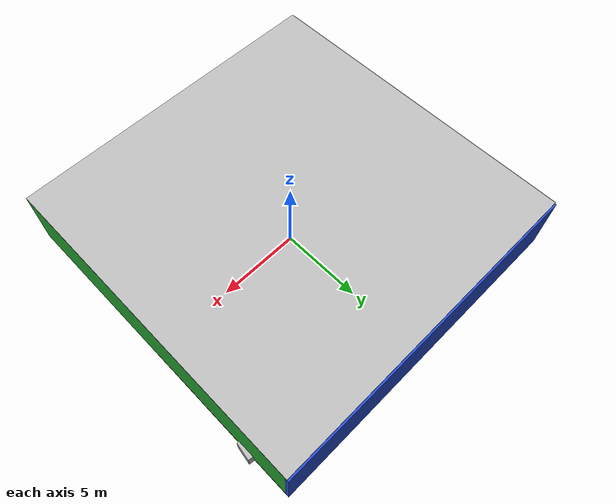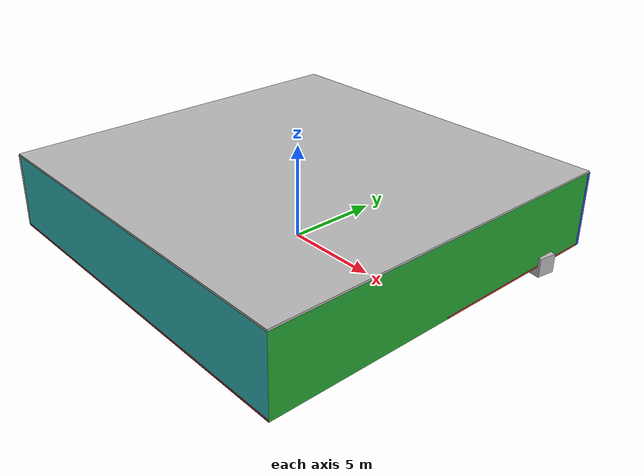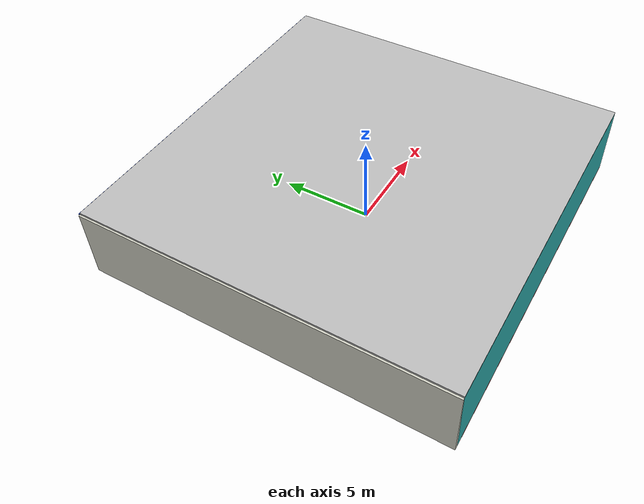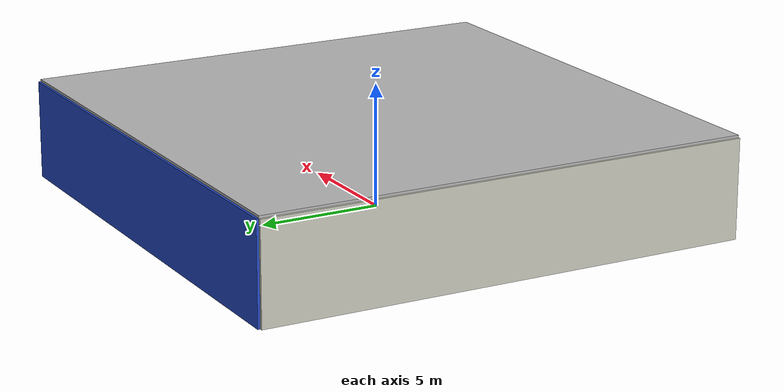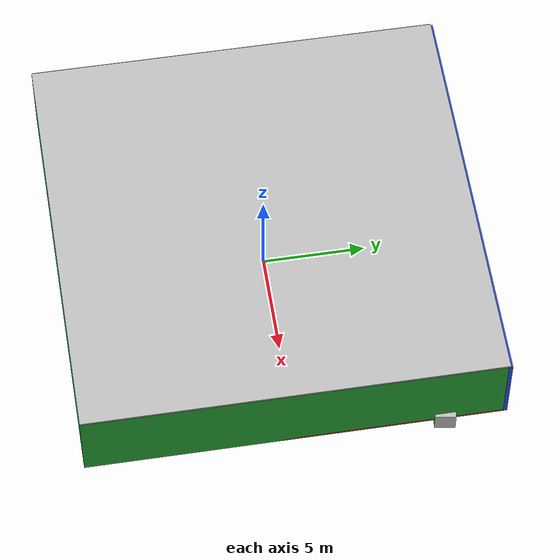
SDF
<sdf version="1.4">
 <world name="default">
  <physics type="ode">
   <max_step_size>0.001</max_step_size>
   <real_time_factor>1</real_time_factor>
   <real_time_update_rate>1000</real_time_update_rate>
   <gravity>0 0 -9.8</gravity>
  </physics>
  <scene><ambient>0.4 0.4 0.4 1</ambient><background>0.7 0.7 0.7 1</background><shadows>1</shadows></scene>
  <model name="Surrounding">
   <static>1</static>
   <link name="Ceiling">
    <collision name="Ceiling_Collision"><geometry><box><size>20 20 0.1</size></box></geometry></collision>
    <visual name="Ceiling_Visual">
     <geometry><box><size>20 20 0.1</size></box></geometry>
     <material>
      <script><uri>file://media/materials/scripts/gazebo.material</uri><name>Gazebo/LightOff</name></script>
     </material>
    </visual>
    <pose>0 0 4.05 0 0 0</pose>
   </link>
   <link name="Wall_South">
    <collision name="Wall_South_Collision">
     <geometry><box><size>20 0 4</size></box></geometry>
     <pose>0 0 2 0 -0 0</pose>
    </collision>
    <visual name="Wall_South_Visual">
     <pose>0 0 2 0 -0 0</pose>
     <geometry><box><size>20 0 4</size></box></geometry>
     <material>
      <script>
       <uri>file://media/materials/scripts/gazebo.material</uri>
       <name>Gazebo/TurquoiseGlowOutline</name>
      </script>
     </material>
    </visual>
    <velocity_decay><linear>0</linear><angular>0</angular></velocity_decay>
    <pose>0 -10 0 0 -0 0</pose>
   </link>
   <link name="Wall_East">
    <collision name="Wall_21_Collision">
     <geometry><box><size>20 0 4</size></box></geometry>
     <pose>0 0 2 0 -0 0</pose>
    </collision>
    <visual name="Wall_21_Visual">
     <pose>0 0 2 0 -0 0</pose>
     <geometry><box><size>20 0 4</size></box></geometry>
     <material>
      <script><uri>file://media/materials/scripts/gazebo.material</uri><name>Gazebo/Green</name></script>
     </material>
    </visual>
    <velocity_decay><linear>0</linear><angular>0</angular></velocity_decay>
    <pose>10 0 0 0 -0 1.5708</pose>
   </link>
   <link name="Wall_North">
    <collision name="Wall_22_Collision">
     <geometry><box><size>20 0.2 4</size></box></geometry>
     <pose>0 0 2 0 -0 0</pose>
    </collision>
    <visual name="Wall_22_Visual">
     <pose>0 0 2 0 -0 0</pose>
     <geometry><box><size>20 0.2 4</size></box></geometry>
     <material>
      <script><uri>file://media/materials/scripts/gazebo.material</uri><name>Gazebo/BlueGlow</name></script>
     </material>
    </visual>
    <velocity_decay><linear>0</linear><angular>0</angular></velocity_decay>
    <pose>0 10 0 0 -0 0</pose>
   </link>
   <link name="Wall_West">
    <collision name="Wall_23_Collision">
     <geometry><box><size>20 0.2 4</size></box></geometry>
     <pose>0 0 2 0 -0 0</pose>
    </collision>
    <visual name="Wall_23_Visual">
     <pose>0 0 2 0 -0 0</pose>
     <geometry><box><size>20 0.2 4</size></box></geometry>
     <material>
      <script><uri>file://media/materials/scripts/gazebo.material</uri><name>Gazebo/PaintedWall</name></script>
     </material>
    </visual>
    <velocity_decay><linear>0</linear><angular>0</angular></velocity_decay>
    <pose>-10 0 0 0 0 -1.5708</pose>
   </link>
   <link name="Ground_link">
    <collision name="collision">
     <pose>0 0 .05 0 -0 0</pose>
     <geometry><box><size>20 20 0.1</size></box></geometry>
    </collision>
    <visual name="visual">
     <pose>0 0 .05 0 -0 0</pose>
     <geometry><box><size>20 20 0.1</size></box></geometry>
     <material>
      <script><uri>file://media/materials/scripts/gazebo.material</uri><name>Gazebo/Red</name></script>
     </material>
    </visual>
   </link>
   <static>1</static>
  </model>
  <spherical_coordinates>
   <surface_model>EARTH_WGS84</surface_model>
   <latitude_deg>0</latitude_deg>
   <longitude_deg>0</longitude_deg>
   <elevation>0</elevation>
   <heading_deg>0</heading_deg>
  </spherical_coordinates>
  <light name="lightball_0" type="diffuse">
   <diffuse>0.8 0.8 0.8 1</diffuse>
   <specular>0.2 0.2 0.2 1</specular>
   <attenuation>
    <range>100</range>
    <constant>0.7</constant>
    <linear>0.01</linear>
    <quadratic>0.001</quadratic>
   </attenuation>
   <direction>-0.5 0.1 -0.9</direction>
   <pose>-1.85022748279 -1.7057133599 3.38456841258 0 0 0</pose>
  </light>
  <light name="lightball_1" type="diffuse">
   <diffuse>0.8 0.8 0.8 1</diffuse>
   <specular>0.2 0.2 0.2 1</specular>
   <attenuation>
    <range>100</range>
    <constant>0.7</constant>
    <linear>0.01</linear>
    <quadratic>0.001</quadratic>
   </attenuation>
   <direction>-0.5 0.1 -0.9</direction>
   <pose>-5.45323832125 7.57218802098 1.11899966403 0 0 0</pose>
  </light>
  <light name="lightball_2" type="diffuse">
   <diffuse>0.8 0.8 0.8 1</diffuse>
   <specular>0.2 0.2 0.2 1</specular>
   <attenuation>
    <range>100</range>
    <constant>0.7</constant>
    <linear>0.01</linear>
    <quadratic>0.001</quadratic>
   </attenuation>
   <direction>-0.5 0.1 -0.9</direction>
   <pose>-6.87009067466 6.83779918238 1.99446582068 0 0 0</pose>
  </light>
  <light name="lightball_3" type="diffuse">
   <diffuse>0.8 0.8 0.8 1</diffuse>
   <specular>0.2 0.2 0.2 1</specular>
   <attenuation>
    <range>100</range>
    <constant>0.7</constant>
    <linear>0.01</linear>
    <quadratic>0.001</quadratic>
   </attenuation>
   <direction>-0.5 0.1 -0.9</direction>
   <pose>5.27191377352 -6.46899894718 2.45669302311 0 0 0</pose>
  </light>
  <light name="lightball_4" type="diffuse">
   <diffuse>0.8 0.8 0.8 1</diffuse>
   <specular>0.2 0.2 0.2 1</specular>
   <attenuation>
    <range>100</range>
    <constant>0.7</constant>
    <linear>0.01</linear>
    <quadratic>0.001</quadratic>
   </attenuation>
   <direction>-0.5 0.1 -0.9</direction>
   <pose>-6.31117499483 -2.86210714098 1.93284471466 0 0 0</pose>
  </light>
  <include>
   <uri>model://robocup_3Dsim_goal</uri>
   <pose>-4.6512688714 -4.69459048767 0 0 0 0.603774626072</pose>
  </include>
  <include><uri>model://cabinet</uri><pose>-4.05317359029 4.46995942047 0 0 0 1.77853545169</pose></include>
  <include><uri>model://cabinet</uri><pose>1.38283297191 -7.67558365921 0 0 0 2.56972381369</pose></include>
  <include><uri>model://table</uri><pose>1.7269270444 1.54094352635 0 0 0 2.84956036134</pose></include>
  <include><uri>model://cabinet</uri><pose>5.13525325582 -7.89334914798 0 0 0 0.675904080776</pose></include>
  <include>
   <uri>model://textured_shapes</uri>
   <pose>8.22730892607 7.37531708093 0 0 0 1.42900193862</pose>
  </include>
 </world>
</sdf>

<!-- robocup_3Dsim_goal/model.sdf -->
<sdf version="1.5">
  <model name="robocup_3d_goal">
    <static>true</static>
    <link name="left_post">
      <pose>0 1.05 0.45 0 0 0</pose>
      <collision name="collision">
        <geometry>
          <cylinder>
            <radius>0.05</radius>
            <length>0.9</length>
          </cylinder>
        </geometry>
      </collision>
      <visual name="visual">
        <geometry>
          <cylinder>
            <radius>0.05</radius>
            <length>0.9</length>
          </cylinder>
        </geometry>
        <material>
          <script>
            <uri>file://media/materials/scripts/gazebo.material</uri>
            <name>Gazebo/ZincYellow</name>
          </script>
        </material>
      </visual>
    </link>
    <link name="left_support_horiz_lower">
      <pose>0.30 1.05 0.01 0 0 0</pose>
      <collision name="collision">
        <geometry>
          <box>
            <size>0.50 0.02 0.02</size>
          </box>
        </geometry>
      </collision>
      <visual name="visual">
        <geometry>
          <box>
            <size>0.50 0.02 0.02</size>
          </box>
        </geometry>
        <material>
          <script>
            <uri>file://media/materials/scripts/gazebo.material</uri>
            <name>Gazebo/White</name>
          </script>
        </material>
      </visual>
    </link>
    <link name="left_support_horiz_upper">
      <pose>0.30 1.05 0.79 0 0 0</pose>
      <collision name="collision">
        <geometry>
          <box>
            <size>0.50 0.02 0.02</size>
          </box>
        </geometry>
      </collision>
      <visual name="visual">
        <geometry>
          <box>
            <size>0.50 0.02 0.02</size>
          </box>
        </geometry>
        <material>
          <script>
            <uri>file://media/materials/scripts/gazebo.material</uri>
            <name>Gazebo/White</name>
          </script>
        </material>
      </visual>
    </link>
    <link name="left_support_vertical">
      <pose>0.56 1.05 0.4 0 1.5708 0</pose>
      <collision name="collision">
        <geometry>
          <box>
            <size>0.80 0.02 0.02</size>
          </box>
        </geometry>
      </collision>
      <visual name="visual">
        <geometry>
          <box>
            <size>0.80 0.02 0.02</size>
          </box>
        </geometry>
        <material>
          <script>
            <uri>file://media/materials/scripts/gazebo.material</uri>
            <name>Gazebo/White</name>
          </script>
        </material>
      </visual>
    </link>
    <link name="right_support_horiz_lower">
      <pose>0.30 -1.05 0.01 0 0 0</pose>
      <collision name="collision">
        <geometry>
          <box>
            <size>0.50 0.02 0.02</size>
          </box>
        </geometry>
      </collision>
      <visual name="visual">
        <geometry>
          <box>
            <size>0.50 0.02 0.02</size>
          </box>
        </geometry>
        <material>
          <script>
            <uri>file://media/materials/scripts/gazebo.material</uri>
            <name>Gazebo/White</name>
          </script>
        </material>
      </visual>
    </link>
    <link name="right_support_horiz_upper">
      <pose>0.30 -1.05 0.79 0 0 0</pose>
      <collision name="collision">
        <geometry>
          <box>
            <size>0.50 0.02 0.02</size>
          </box>
        </geometry>
      </collision>
      <visual name="visual">
        <geometry>
          <box>
            <size>0.50 0.02 0.02</size>
          </box>
        </geometry>
        <material>
          <script>
            <uri>file://media/materials/scripts/gazebo.material</uri>
            <name>Gazebo/White</name>
          </script>
        </material>
      </visual>
    </link>
    <link name="right_support_vertical">
      <pose>0.56 -1.05 0.4 0 1.5708 0</pose>
      <collision name="collision">
        <geometry>
          <box>
            <size>0.80 0.02 0.02</size>
          </box>
        </geometry>
      </collision>
      <visual name="visual">
        <geometry>
          <box>
            <size>0.80 0.02 0.02</size>
          </box>
        </geometry>
        <material>
          <script>
            <uri>file://media/materials/scripts/gazebo.material</uri>
            <name>Gazebo/White</name>
          </script>
        </material>
      </visual>
    </link>
    <link name="center_support_horiz_lower">
      <pose>0.56 0 0.01 0 1.5708 0</pose>
      <collision name="collision">
        <geometry>
          <box>
            <size>0.02 2.08 0.02</size>
          </box>
        </geometry>
      </collision>
      <visual name="visual">
        <geometry>
          <box>
            <size>0.02 2.08 0.02</size>
          </box>
        </geometry>
        <material>
          <script>
            <uri>file://media/materials/scripts/gazebo.material</uri>
            <name>Gazebo/White</name>
          </script>
        </material>
      </visual>
    </link>
    <link name="center_support_horiz_upper">
      <pose>0.56 0 0.79 0 1.5708 0</pose>
      <collision name="collision">
        <geometry>
          <box>
            <size>0.02 2.08 0.02</size>
          </box>
        </geometry>
      </collision>
      <visual name="visual">
        <geometry>
          <box>
            <size>0.02 2.08 0.02</size>
          </box>
        </geometry>
        <material>
          <script>
            <uri>file://media/materials/scripts/gazebo.material</uri>
            <name>Gazebo/White</name>
          </script>
        </material>
      </visual>
    </link>
    <link name="right_post">
      <pose>0 -1.05 0.45 0 0 0</pose>
      <collision name="collision">
        <geometry>
          <cylinder>
            <radius>0.05</radius>
            <length>0.9</length>
          </cylinder>
        </geometry>
      </collision>
      <visual name="visual">
        <geometry>
          <cylinder>
            <radius>0.05</radius>
            <length>0.9</length>
          </cylinder>
        </geometry>
        <material>
          <script>
            <uri>file://media/materials/scripts/gazebo.material</uri>
            <name>Gazebo/ZincYellow</name>
          </script>
        </material>
      </visual>
    </link>
    <link name="crossbar">
      <pose>0 0 0.85 1.57 1.57 0</pose>
      <collision name="collision">
        <geometry>
          <cylinder>
            <radius>0.05</radius>
            <length>2.0</length>
          </cylinder>
        </geometry>
      </collision>
      <visual name="visual">
        <geometry>
          <cylinder>
            <radius>0.05</radius>
            <length>2.0</length>
          </cylinder>
        </geometry>
        <material>
          <script>
            <uri>file://media/materials/scripts/gazebo.material</uri>
            <name>Gazebo/ZincYellow</name>
          </script>
        </material>
      </visual>
    </link>
    <link name="center_net">
      <pose>0.56 0 0.40 0 0 0</pose>
      <collision name="collision">
        <geometry>
          <box>
            <size>0.01 2.1 0.80</size>
          </box>
        </geometry>
      </collision>
      <visual name="visual">
        <geometry>
          <box>
            <size>0.01 2.1 0.80</size>
          </box>
        </geometry>
        <material>
          <script>
            <uri>model://../model_source/models/robocup09_spl_field/materials/scripts/</uri>
            <uri>model://../model_source/models/robocup09_spl_field/materials/textures/</uri>
            <name>RoboCup/Net</name>
          </script>
        </material>
      </visual>
    </link>
    <link name="left_net">
      <pose>0.30 1.05 0.40 0 0 0</pose>
      <collision name="collision">
        <geometry>
          <box>
            <size>0.50 0.01 0.76</size>
          </box>
        </geometry>
      </collision>
      <visual name="visual">
        <geometry>
          <box>
            <size>0.50 0.01 0.76</size>
          </box>
        </geometry>
        <material>
          <script>
            <uri>model://../model_source/models/robocup09_spl_field/materials/scripts/</uri>
            <uri>model://../model_source/models/robocup09_spl_field/materials/textures/</uri>
            <name>RoboCup/Net</name>
          </script>
        </material>
      </visual>
    </link>
    <link name="right_net">
      <pose>0.30 -1.05 0.40 0 0 0</pose>
      <collision name="collision">
        <geometry>
          <box>
            <size>0.50 0.01 0.76</size>
          </box>
        </geometry>
      </collision>
      <visual name="visual">
        <geometry>
          <box>
            <size>0.50 0.01 0.76</size>
          </box>
        </geometry>
        <material>
          <script>
            <uri>model://../model_source/models/robocup09_spl_field/materials/scripts/</uri>
            <uri>model://../model_source/models/robocup09_spl_field/materials/textures/</uri>
            <name>RoboCup/Net</name>
          </script>
        </material>
      </visual>
    </link>
  </model>
</sdf>

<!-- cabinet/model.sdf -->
<sdf version="1.5">
  <model name="cabinet">
    <static>true</static>
    <link name="cabinet_bottom_plate">
      <inertial>
        <pose>0 0 -1 0 0 0</pose>
        <inertia>
          <ixx>2.050000</ixx>
          <ixy>0</ixy>
          <ixz>0</ixz>
          <iyy>2.050000</iyy>
          <iyz>0</iyz>
          <izz>2.050000</izz>
        </inertia>
        <mass>25.000000</mass>
      </inertial>
      <collision name="cabinet_bottom_plate_geom">
        <pose>0 0 0.010000 0 0 0</pose>
        <geometry>
          <box>
            <size>0.450000 0.450000 0.020000</size>
          </box>
        </geometry>
      </collision>
      <visual name="cabinet_bottom_plate_geom_visual">
        <pose>0 0 0.010000 0 0 0</pose>
        <geometry>
          <box>
            <size>0.450000 0.450000 0.020000</size>
          </box>
        </geometry>
        <material>
          <script>
            <uri>model://media/materials/scripts/gazebo.material</uri>
            <name>Gazebo/Wood</name>
          </script>
        </material>
      </visual>
      <collision name="cabinet_bottom_plate_geom_cabinet_back_plate">
        <pose>0.235000 0 0.510000 0 0 0</pose>
        <geometry>
          <box>
            <size>0.020000 0.450000 1.020000</size>
          </box>
        </geometry>
      </collision>
      <visual name="cabinet_bottom_plate_geom_cabinet_back_plate_visual">
        <pose>0.235000 0 0.510000 0 0 0</pose>
        <geometry>
          <box>
            <size>0.020000 0.450000 1.020000</size>
          </box>
        </geometry>
        <material>
          <script>
            <uri>model://media/materials/scripts/gazebo.material</uri>
            <name>Gazebo/Wood</name>
          </script>
        </material>
      </visual>
      <collision name="cabinet_bottom_plate_geom_cabinet_left_plate">
        <pose>0 0.235000 0.510000 0 0 0</pose>
        <geometry>
          <box>
            <size>0.450000 0.020000 1.020000</size>
          </box>
        </geometry>
      </collision>
      <visual name="cabinet_bottom_plate_geom_cabinet_left_plate_visual">
        <pose>0 0.235000 0.510000 0 0 0</pose>
        <geometry>
          <box>
            <size>0.450000 0.020000 1.020000</size>
          </box>
        </geometry>
        <material>
          <script>
            <uri>model://media/materials/scripts/gazebo.material</uri>
            <name>Gazebo/Wood</name>
          </script>
        </material>
      </visual>
      <collision name="cabinet_bottom_plate_geom_cabinet_middle_plate">
        <pose>0 0 0.510000 0 0 0</pose>
        <geometry>
          <box>
            <size>0.450000 0.450000 0.020000</size>
          </box>
        </geometry>
      </collision>
      <visual name="cabinet_bottom_plate_geom_cabinet_middle_plate_visual">
        <pose>0 0 0.510000 0 0 0</pose>
        <geometry>
          <box>
            <size>0.450000 0.450000 0.020000</size>
          </box>
        </geometry>
        <material>
          <script>
            <uri>model://media/materials/scripts/gazebo.material</uri>
            <name>Gazebo/Wood</name>
          </script>
        </material>
      </visual>
      <collision name="cabinet_bottom_plate_geom_cabinet_right_plate">
        <pose>0 -0.235000 0.510000 0 0 0</pose>
        <geometry>
          <box>
            <size>0.450000 0.020000 1.020000</size>
          </box>
        </geometry>
      </collision>
      <visual name="cabinet_bottom_plate_geom_cabinet_right_plate_visual">
        <pose>0 -0.235000 0.510000 0 0 0</pose>
        <geometry>
          <box>
            <size>0.450000 0.020000 1.020000</size>
          </box>
        </geometry>
        <material>
          <script>
            <uri>model://media/materials/scripts/gazebo.material</uri>
            <name>Gazebo/Wood</name>
          </script>
        </material>
      </visual>
      <collision name="cabinet_bottom_plate_geom_cabinet_top_plate">
        <pose>0 0 1.010000 0 0 0</pose>
        <geometry>
          <box>
            <size>0.450000 0.450000 0.020000</size>
          </box>
        </geometry>
      </collision>
      <visual name="cabinet_bottom_plate_geom_cabinet_top_plate_visual">
        <pose>0 0 1.010000 0 0 0</pose>
        <geometry>
          <box>
            <size>0.450000 0.450000 0.020000</size>
          </box>
        </geometry>
        <material>
          <script>
            <uri>model://media/materials/scripts/gazebo.material</uri>
            <name>Gazebo/Wood</name>
          </script>
        </material>
      </visual>
    </link>
  </model>
</sdf>

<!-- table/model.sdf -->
<sdf version="1.5">
  <model name="table">
    <static>true</static>
    <link name="link">
      <collision name="surface">
        <pose>0 0 1.0 0 0 0</pose>
        <geometry>
          <box>
            <size>1.5 0.8 0.03</size>
          </box>
        </geometry>
        <surface>
          <friction>
            <ode>
              <mu>0.6</mu>
              <mu2>0.6</mu2>
            </ode>
          </friction>
        </surface>
      </collision>
      <visual name="visual1">
        <pose>0 0 1.0 0 0 0</pose>
        <geometry>
          <box>
            <size>1.5 0.8 0.03</size>
          </box>
        </geometry>
        <material>
          <script>
            <uri>model://media/materials/scripts/gazebo.material</uri>
            <name>Gazebo/Wood</name>
          </script>
        </material>
      </visual>
      <collision name="front_left_leg">
        <pose>0.68 0.38 0.5 0 0 0</pose>
        <geometry>
          <cylinder>
            <radius>0.02</radius>
            <length>1.0</length>
          </cylinder>
        </geometry>
      </collision>
      <visual name="front_left_leg">
        <pose>0.68 0.38 0.5 0 0 0</pose>
        <geometry>
          <cylinder>
            <radius>0.02</radius>
            <length>1.0</length>
          </cylinder>
        </geometry>
        <material>
          <script>
            <uri>model://media/materials/scripts/gazebo.material</uri>
            <name>Gazebo/Grey</name>
          </script>
        </material>
      </visual>
      <collision name="front_right_leg">
        <pose>0.68 -0.38 0.5 0 0 0</pose>
        <geometry>
          <cylinder>
            <radius>0.02</radius>
            <length>1.0</length>
          </cylinder>
        </geometry>
      </collision>
      <visual name="front_right_leg">
        <pose>0.68 -0.38 0.5 0 0 0</pose>
        <geometry>
          <cylinder>
            <radius>0.02</radius>
            <length>1.0</length>
          </cylinder>
        </geometry>
        <material>
          <script>
            <uri>model://media/materials/scripts/gazebo.material</uri>
            <name>Gazebo/Grey</name>
          </script>
        </material>
      </visual>
      <collision name="back_right_leg">
        <pose>-0.68 -0.38 0.5 0 0 0</pose>
        <geometry>
          <cylinder>
            <radius>0.02</radius>
            <length>1.0</length>
          </cylinder>
        </geometry>
      </collision>
      <visual name="back_right_leg">
        <pose>-0.68 -0.38 0.5 0 0 0</pose>
        <geometry>
          <cylinder>
            <radius>0.02</radius>
            <length>1.0</length>
          </cylinder>
        </geometry>
        <material>
          <script>
            <uri>model://media/materials/scripts/gazebo.material</uri>
            <name>Gazebo/Grey</name>
          </script>
        </material>
      </visual>
      <collision name="back_left_leg">
        <pose>-0.68 0.38 0.5 0 0 0</pose>
        <geometry>
          <cylinder>
            <radius>0.02</radius>
            <length>1.0</length>
          </cylinder>
        </geometry>
      </collision>
      <visual name="back_left_leg">
        <pose>-0.68 0.38 0.5 0 0 0</pose>
        <geometry>
          <cylinder>
            <radius>0.02</radius>
            <length>1.0</length>
          </cylinder>
        </geometry>
        <material>
          <script>
            <uri>model://media/materials/scripts/gazebo.material</uri>
            <name>Gazebo/Grey</name>
          </script>
        </material>
      </visual>
    </link>
  </model>
</sdf>

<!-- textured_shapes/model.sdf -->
<sdf version="1.6">
  <model name="textured_shapes">
    <pose>0 0 0.5 0 0 0</pose>
    <link name="box">
      <pose>0 -1.5 0 0 0 0</pose>
      <collision name="collision">
        <geometry>
          <box>
            <size>1 1 1</size>
          </box>
        </geometry>
      </collision>
      <visual name="visual">
        <geometry>
          <box>
            <size>1 1 1</size>
          </box>
        </geometry>
        <material>
          <script>
            <uri>model://../model_source/models/textured_shapes/materials/scripts</uri>
            <uri>model://../model_source/models/textured_shapes/materials/textures</uri>
            <name>TexturedShape/Squares</name>
          </script>
        </material>
      </visual>
    </link>
    <link name="sphere">
      <collision name="collision">
        <geometry>
          <sphere>
            <radius>0.5</radius>
          </sphere>
        </geometry>
      </collision>
      <visual name="visual">
        <geometry>
          <sphere>
            <radius>0.5</radius>
          </sphere>
        </geometry>
        <material>
          <script>
            <uri>model://../model_source/models/textured_shapes/materials/scripts</uri>
            <uri>model://../model_source/models/textured_shapes/materials/textures</uri>
            <name>TexturedShape/Squares</name>
          </script>
        </material>
      </visual>
    </link>
    <link name="cylinder">
      <pose>0 1.5 0 0 0 0</pose>
      <collision name="collision">
        <geometry>
          <cylinder>
            <radius>0.5</radius>
            <length>1</length>
          </cylinder>
        </geometry>
      </collision>
      <visual name="visual">
        <geometry>
          <cylinder>
            <radius>0.5</radius>
            <length>1</length>
          </cylinder>
        </geometry>
        <material>
          <script>
            <uri>model://../model_source/models/textured_shapes/materials/scripts</uri>
            <uri>model://../model_source/models/textured_shapes/materials/textures</uri>
            <name>TexturedShape/Squares</name>
          </script>
        </material>
      </visual>
    </link>
  </model>
</sdf>
